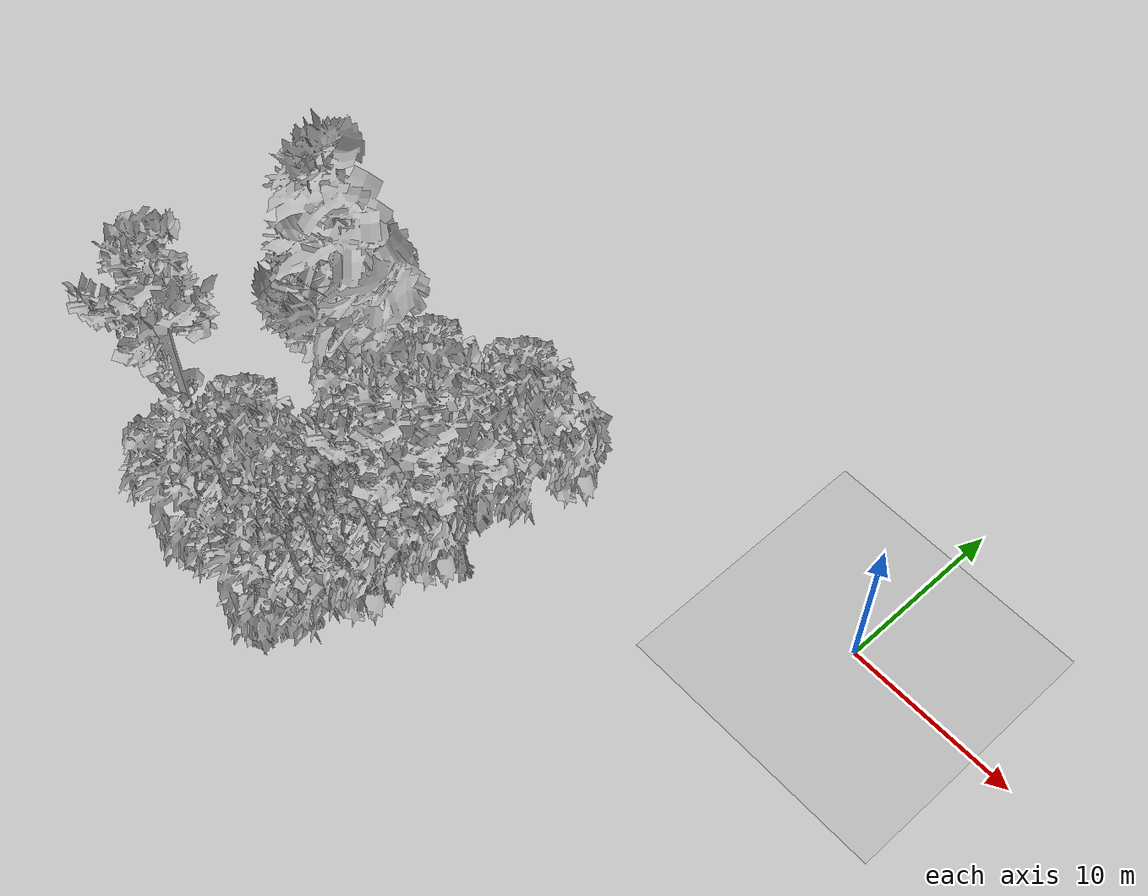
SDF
<sdf version="1.7">
 <world name="default">
  <model name="ground_plane">
   <static>1</static>
   <link name="link">
    <collision name="collision">
     <geometry><plane><normal>0 0 1</normal><size>70 70</size></plane></geometry>
     <surface><contact><ode><min_depth>0.01</min_depth><max_vel>0</max_vel></ode></contact></surface>
    </collision>
    <visual name="grass">
     <cast_shadows>0</cast_shadows>
     <geometry>
      <mesh>
       <scale>0.29000000000000004 0.29000000000000004 0.1</scale>
       <uri>file://grass_plane/meshes/grass_plane.dae</uri>
      </mesh>
     </geometry>
    </visual>
   </link>
  </model>
  <model name="Tree 62">
   <static>1</static>
   <pose>-19.067529925008294 -13.201055790567242 0 1.57079 -0 0</pose>
   <link name="link">
    <collision name="collision">
     <geometry><mesh><scale>5 5 5</scale><uri>model://tree_9/meshes/tree_9.obj</uri></mesh></geometry>
    </collision>
    <visual name="visual">
     <geometry><mesh><scale>5 5 5</scale><uri>model://tree_9/meshes/tree_9.obj</uri></mesh></geometry>
    </visual>
   </link>
  </model>
  <model name="Tree 74">
   <static>1</static>
   <pose>-19.716172143878552 -19.086841216495472 0 1.57079 -0 0</pose>
   <link name="link">
    <collision name="collision">
     <geometry><mesh><scale>5 5 5</scale><uri>model://tree_2/meshes/tree_2.obj</uri></mesh></geometry>
    </collision>
    <visual name="visual">
     <geometry><mesh><scale>5 5 5</scale><uri>model://tree_2/meshes/tree_2.obj</uri></mesh></geometry>
    </visual>
   </link>
  </model>
  <model name="Tree 85">
   <static>1</static>
   <pose>-20.095818078692574 -13.675018500476146 0 1.57079 -0 0</pose>
   <link name="link">
    <collision name="collision">
     <geometry><mesh><scale>5 5 5</scale><uri>model://tree_2/meshes/tree_2.obj</uri></mesh></geometry>
    </collision>
    <visual name="visual">
     <geometry><mesh><scale>5 5 5</scale><uri>model://tree_2/meshes/tree_2.obj</uri></mesh></geometry>
    </visual>
   </link>
  </model>
  <model name="Tree 106">
   <static>1</static>
   <pose>-17.268565066868977 -11.427241769809463 0 1.57079 -0 0</pose>
   <link name="link">
    <collision name="collision">
     <geometry><mesh><scale>5 5 5</scale><uri>model://tree_9/meshes/tree_9.obj</uri></mesh></geometry>
    </collision>
    <visual name="visual">
     <geometry><mesh><scale>5 5 5</scale><uri>model://tree_9/meshes/tree_9.obj</uri></mesh></geometry>
    </visual>
   </link>
  </model>
  <model name="Tree 107">
   <static>1</static>
   <pose>-32.96344232271747 -16.921591341886742 0 1.57079 -0 0</pose>
   <link name="link">
    <collision name="collision">
     <geometry><mesh><scale>5 5 5</scale><uri>model://tree_9/meshes/tree_9.obj</uri></mesh></geometry>
    </collision>
    <visual name="visual">
     <geometry><mesh><scale>5 5 5</scale><uri>model://tree_9/meshes/tree_9.obj</uri></mesh></geometry>
    </visual>
   </link>
  </model>
  <model name="Tree 118">
   <static>1</static>
   <pose>-20.01426884990286 -17.759214028764955 0 1.57079 -0 0</pose>
   <link name="link">
    <collision name="collision">
     <geometry><mesh><scale>5 5 5</scale><uri>model://tree_2/meshes/tree_2.obj</uri></mesh></geometry>
    </collision>
    <visual name="visual">
     <geometry><mesh><scale>5 5 5</scale><uri>model://tree_2/meshes/tree_2.obj</uri></mesh></geometry>
    </visual>
   </link>
  </model>
  <model name="Tree 126">
   <static>1</static>
   <pose>-22.077783318988228 -9.99314157920568 0 1.57079 -0 0</pose>
   <link name="link">
    <collision name="collision">
     <geometry><mesh><scale>5 5 5</scale><uri>model://tree_2/meshes/tree_2.obj</uri></mesh></geometry>
    </collision>
    <visual name="visual">
     <geometry><mesh><scale>5 5 5</scale><uri>model://tree_2/meshes/tree_2.obj</uri></mesh></geometry>
    </visual>
   </link>
  </model>
  <model name="Tree 187">
   <static>1</static>
   <pose>-18.939420481444436 -15.40312610494675 0 1.57079 -0 0</pose>
   <link name="link">
    <collision name="collision">
     <geometry><mesh><scale>5 5 5</scale><uri>model://tree_2/meshes/tree_2.obj</uri></mesh></geometry>
    </collision>
    <visual name="visual">
     <geometry><mesh><scale>5 5 5</scale><uri>model://tree_2/meshes/tree_2.obj</uri></mesh></geometry>
    </visual>
   </link>
  </model>
  <model name="Tree 221">
   <static>1</static>
   <pose>-27.2386907818979 -9.726023340541936 0 1.57079 -0 0</pose>
   <link name="link">
    <collision name="collision">
     <geometry><mesh><scale>5 5 5</scale><uri>model://tree_4/meshes/tree_4.obj</uri></mesh></geometry>
    </collision>
    <visual name="visual">
     <geometry><mesh><scale>5 5 5</scale><uri>model://tree_4/meshes/tree_4.obj</uri></mesh></geometry>
    </visual>
   </link>
  </model>
  <model name="Tree 235">
   <static>1</static>
   <pose>-17.868260676757316 -7.416805340697923 0 1.57079 -0 0</pose>
   <link name="link">
    <collision name="collision">
     <geometry><mesh><scale>5 5 5</scale><uri>model://tree_2/meshes/tree_2.obj</uri></mesh></geometry>
    </collision>
    <visual name="visual">
     <geometry><mesh><scale>5 5 5</scale><uri>model://tree_2/meshes/tree_2.obj</uri></mesh></geometry>
    </visual>
   </link>
  </model>
  <model name="Tree 240">
   <static>1</static>
   <pose>-25.339402348239968 -18.981659076878618 0 1.57079 -0 0</pose>
   <link name="link">
    <collision name="collision">
     <geometry><mesh><scale>5 5 5</scale><uri>model://tree_2/meshes/tree_2.obj</uri></mesh></geometry>
    </collision>
    <visual name="visual">
     <geometry><mesh><scale>5 5 5</scale><uri>model://tree_2/meshes/tree_2.obj</uri></mesh></geometry>
    </visual>
   </link>
  </model>
  <model name="Tree 243">
   <static>1</static>
   <pose>-19.974481844744403 -14.474316190863775 0 1.57079 -0 0</pose>
   <link name="link">
    <collision name="collision">
     <geometry><mesh><scale>5 5 5</scale><uri>model://tree_2/meshes/tree_2.obj</uri></mesh></geometry>
    </collision>
    <visual name="visual">
     <geometry><mesh><scale>5 5 5</scale><uri>model://tree_2/meshes/tree_2.obj</uri></mesh></geometry>
    </visual>
   </link>
  </model>
  <model name="Bush 34">
   <static>1</static>
   <pose>-22.202123518375686 -17.70142537099176 0 1.57079 -0 0</pose>
   <link name="link">
    <collision name="collision">
     <geometry><mesh><scale>2 2 2</scale><uri>model://bush_2/meshes/bush_2.obj</uri></mesh></geometry>
    </collision>
    <visual name="visual">
     <geometry><mesh><scale>5 5 5</scale><uri>model://bush_2/meshes/bush_2.obj</uri></mesh></geometry>
    </visual>
   </link>
  </model>
 </world>
</sdf>
